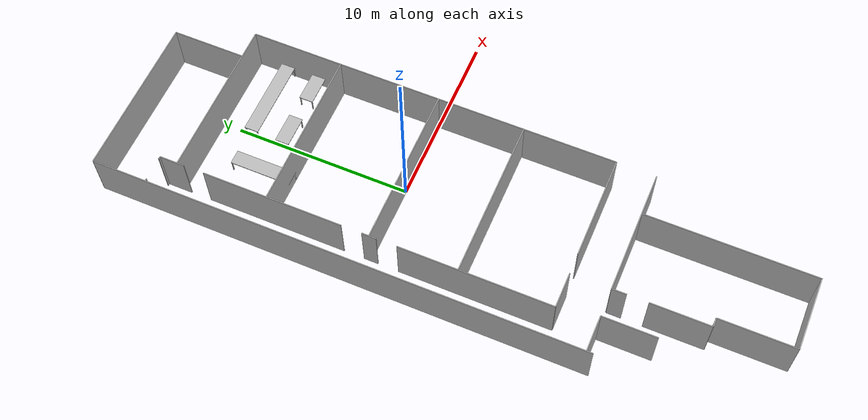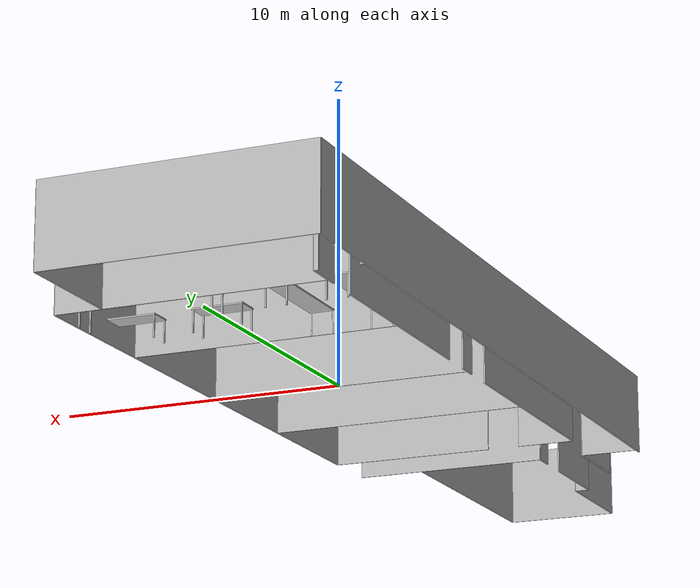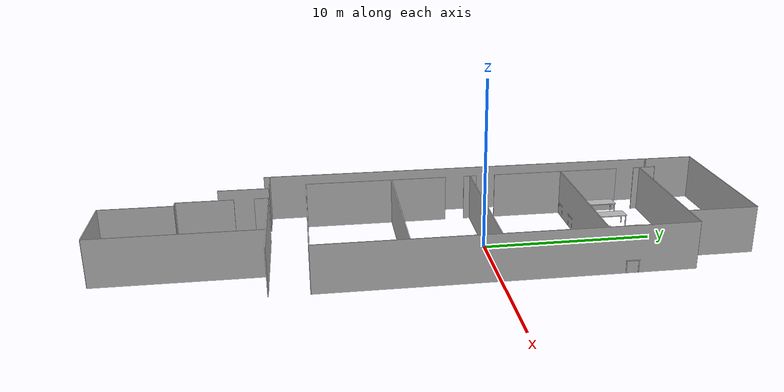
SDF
<?xml version="1.0" ?>
<sdf version="1.7">
  <model name="car_layout">
    <static>true</static>

    <model name='wall_sx'>
      <static>1</static>
      <link name='link'>
        <pose>-1.6 15.1 1.4 0 -0 0</pose>
        <collision name='collision'>
          <geometry>
            <box>
              <size>9 0.05 2.8</size>
            </box>
          </geometry>
        </collision>
        <visual name='visual'>
          <geometry>
            <box>
              <size>9 0.05 2.8</size>
            </box>
          </geometry>
        </visual>
      </link>
    </model>

    <model name='wall_dx'>
      <static>1</static>
      <link name='link'>
        <pose>0.05 -21.75 1.4 0 -0 0</pose>
        <collision name='collision'>
          <geometry>
            <box>
              <size>4.1 0.05 2.8</size>
            </box>
          </geometry>
        </collision>
        <visual name='visual'>
          <geometry>
            <box>
              <size>4.1 0.05 2.8</size>
            </box>
          </geometry>
        </visual>
      </link>
    </model>

    <model name='wall_dx_2'>
      <static>1</static>
      <link name='link'>
        <pose>-2.25 -17.55 1.4 0 -0 0</pose>
        <collision name='collision'>
          <geometry>
            <box>
              <size>0.5 0.05 2.8</size>
            </box>
          </geometry>
        </collision>
        <visual name='visual'>
          <geometry>
            <box>
              <size>0.5 0.05 2.8</size>
            </box>
          </geometry>
        </visual>
      </link>
    </model>

    <model name='wall_sopra'>
      <static>1</static>
      <link name='link'>
        <pose>4.5 0.45 1.4 0 -0 1.57</pose>
        <collision name='collision'>
          <geometry>
            <box>
              <size>21.1 0.05 2.8</size>
            </box>
          </geometry>
        </collision>
        <visual name='visual'>
          <geometry>
            <box>
              <size>21.1 0.05 2.8</size>
            </box>
          </geometry>
        </visual>
      </link>
    </model>

    <model name='wall_sopra_1'>
      <static>1</static>
      <link name='link'>
        <pose>2.9 13.05 1.4 0 -0 1.57</pose>
        <collision name='collision'>
          <geometry>
            <box>
              <size>4.1 0.05 2.8</size>
            </box>
          </geometry>
        </collision>
        <visual name='visual'>
          <geometry>
            <box>
              <size>4.1 0.05 2.8</size>
            </box>
          </geometry>
        </visual>
      </link>
    </model>

    <model name='wall_sopra_2'>
      <static>1</static>
      <link name='link'>
        <pose>-4.1 -13.8 1.4 0 -0 1.57</pose>
        <collision name='collision'>
          <geometry>
            <box>
              <size>3 0.05 2.8</size>
            </box>
          </geometry>
        </collision>
        <visual name='visual'>
          <geometry>
            <box>
              <size>3 0.05 2.8</size>
            </box>
          </geometry>
        </visual>
      </link>
    </model>

    <model name='wall_sopra_3'>
      <static>1</static>
      <link name='link'>
        <pose>2.1 -17.025 1.4 0 -0 1.57</pose>
        <collision name='collision'>
          <geometry>
            <box>
              <size>9.45 0.05 2.8</size>
            </box>
          </geometry>
        </collision>
        <visual name='visual'>
          <geometry>
            <box>
              <size>9.45 0.05 2.8</size>
            </box>
          </geometry>
        </visual>
      </link>
    </model>

    <model name='corridor'>
      <static>1</static>
      <link name='link'>
        <pose>-6.1 1.225 1.4 0 -0 1.57</pose>
        <collision name='collision'>
          <geometry>
            <box>
              <size>27.75 0.05 2.8</size>
            </box>
          </geometry>
        </collision>
        <visual name='visual'>
          <geometry>
            <box>
              <size>27.75 0.05 2.8</size>
            </box>
          </geometry>
        </visual>
      </link>
    </model>

    <model name='corridor_vertical'>
      <static>1</static>
      <link name='link'>
        <pose>-5.1 -12.3 1.4 0 -0 0</pose>
        <collision name='collision'>
          <geometry>
            <box>
              <size>2 0.05 2.8</size>
            </box>
          </geometry>
        </collision>
        <visual name='visual'>
          <geometry>
            <box>
              <size>2 0.05 2.8</size>
            </box>
          </geometry>
        </visual>
      </link>
    </model>

    <model name='i'>
      <static>1</static>
      <link name='link'>
        <pose>0 11 1.4 0 -0 0</pose>
        <collision name='collision'>
          <geometry>
            <box>
              <size>9 0.05 2.8</size>
            </box>
          </geometry>
        </collision>
        <visual name='visual'>
          <geometry>
            <box>
              <size>9 0.05 2.8</size>
            </box>
          </geometry>
        </visual>
      </link>
    </model>

    <model name='i_2'>
      <static>1</static>
      <link name='link'>
        <pose>-4.575 12 1.4 0 -0 0</pose>
        <collision name='collision'>
          <geometry>
            <box>
              <size>0.15 0.05 2.8</size>
            </box>
          </geometry>
        </collision>
        <visual name='visual'>
          <geometry>
            <box>
              <size>0.15 0.05 2.8</size>
            </box>
          </geometry>
        </visual>
      </link>
    </model>

    <model name='i_3'>
      <static>1</static>
      <link name='link'>
        <pose>-6.025 12 1.4 0 -0 0</pose>
        <collision name='collision'>
          <geometry>
            <box>
              <size>0.15 0.05 2.8</size>
            </box>
          </geometry>
        </collision>
        <visual name='visual'>
          <geometry>
            <box>
              <size>0.15 0.05 2.8</size>
            </box>
          </geometry>
        </visual>
      </link>
    </model>

    <model name='h'>
      <static>1</static>
      <link name='link'>
        <pose>0 5.8 1.4 0 -0 0</pose>
        <collision name='collision'>
          <geometry>
            <box>
              <size>9 0.05 2.8</size>
            </box>
          </geometry>
        </collision>
        <visual name='visual'>
          <geometry>
            <box>
              <size>9 0.05 2.8</size>
            </box>
          </geometry>
        </visual>
      </link>
    </model>

    <model name='h_oriz'>
      <static>1</static>
      <link name='link'>
        <pose>-4.5 11.3 1.4 0 -0 1.57</pose>
        <collision name='collision'>
          <geometry>
            <box>
              <size>1.4 0.05 2.8</size>
            </box>
          </geometry>
        </collision>
        <visual name='visual'>
          <geometry>
            <box>
              <size>1.4 0.05 2.8</size>
            </box>
          </geometry>
        </visual>
      </link>
    </model>

    <model name='j'>
      <static>1</static>
      <link name='link'>
        <pose>0 0 1.4 0 -0 0</pose>
        <collision name='collision'>
          <geometry>
            <box>
              <size>9 0.05 2.8</size>
            </box>
          </geometry>
        </collision>
        <visual name='visual'>
          <geometry>
            <box>
              <size>9 0.05 2.8</size>
            </box>
          </geometry>
        </visual>
      </link>
    </model>

    <model name='j_h_oriz'>
      <static>1</static>
      <link name='link'>
        <pose>-4.5 5.5 1.4 0 -0 1.57</pose>
        <collision name='collision'>
          <geometry>
            <box>
              <size>7.9 0.05 2.8</size>
            </box>
          </geometry>
        </collision>
        <visual name='visual'>
          <geometry>
            <box>
              <size>7.9 0.05 2.8</size>
            </box>
          </geometry>
        </visual>
      </link>
    </model>

    <model name='j_oriz'>
      <static>1</static>
      <link name='link'>
        <pose>-4.5 0 1.4 0 -0 1.57</pose>
        <collision name='collision'>
          <geometry>
            <box>
              <size>0.8 0.05 2.8</size>
            </box>
          </geometry>
        </collision>
        <visual name='visual'>
          <geometry>
            <box>
              <size>0.8 0.05 2.8</size>
            </box>
          </geometry>
        </visual>
      </link>
    </model>

    <model name='k'>
      <static>1</static>
      <link name='link'>
        <pose>0 -4.9 1.4 0 -0 0</pose>
        <collision name='collision'>
          <geometry>
            <box>
              <size>9 0.05 2.8</size>
            </box>
          </geometry>
        </collision>
        <visual name='visual'>
          <geometry>
            <box>
              <size>9 0.05 2.8</size>
            </box>
          </geometry>
        </visual>
      </link>
    </model>

    <model name='pratica'>
      <static>1</static>
      <link name='link'>
        <pose>1.575 -10.1 1.4 0 -0 0</pose>
        <collision name='collision'>
          <geometry>
            <box>
              <size>5.85 0.05 2.8</size>
            </box>
          </geometry>
        </collision>
        <visual name='visual'>
          <geometry>
            <box>
              <size>5.85 0.05 2.8</size>
            </box>
          </geometry>
        </visual>
      </link>
    </model>

    <model name='pratica2'>
      <static>1</static>
      <link name='link'>
        <pose>-3.5 -10.1 1.4 0 -0 0</pose>
        <collision name='collision'>
          <geometry>
            <box>
              <size>2 0.05 2.8</size>
            </box>
          </geometry>
        </collision>
        <visual name='visual'>
          <geometry>
            <box>
              <size>2 0.05 2.8</size>
            </box>
          </geometry>
        </visual>
      </link>
    </model>

    <model name='k_pratica_oriz'>
      <static>1</static>
      <link name='link'>
        <pose>-4.5 -5.825 1.4 0 -0 1.57</pose>
        <collision name='collision'>
          <geometry>
            <box>
              <size>8.55 0.05 2.8</size>
            </box>
          </geometry>
        </collision>
        <visual name='visual'>
          <geometry>
            <box>
              <size>8.55 0.05 2.8</size>
            </box>
          </geometry>
        </visual>
      </link>
    </model>

    <model name='quadrupedi'>
      <static>1</static>
      <link name='link'>
        <pose>1 -12.3 1.4 0 -0 0</pose>
        <collision name='collision'>
          <geometry>
            <box>
              <size>7 0.05 2.8</size>
            </box>
          </geometry>
        </collision>
        <visual name='visual'>
          <geometry>
            <box>
              <size>7 0.05 2.8</size>
            </box>
          </geometry>
        </visual>
      </link>
    </model>

    <model name='quadrupedi_oriz1'>
      <static>1</static>
      <link name='link'>
        <pose>-2.5 -12.7 1.4 0 -0 1.57</pose>
        <collision name='collision'>
          <geometry>
            <box>
              <size>0.8 0.05 2.8</size>
            </box>
          </geometry>
        </collision>
        <visual name='visual'>
          <geometry>
            <box>
              <size>0.8 0.05 2.8</size>
            </box>
          </geometry>
        </visual>
      </link>
    </model>

    <model name='quadrupedi_oriz2'>
      <static>1</static>
      <link name='link'>
        <pose>-2.5 -15.9 1.4 0 -0 1.57</pose>
        <collision name='collision'>
          <geometry>
            <box>
              <size>3.3 0.05 2.8</size>
            </box>
          </geometry>
        </collision>
        <visual name='visual'>
          <geometry>
            <box>
              <size>3.3 0.05 2.8</size>
            </box>
          </geometry>
        </visual>
      </link>
    </model>

    <model name='quadrupedi_oriz3'>
      <static>1</static>
      <link name='link'>
        <pose>-2 -19.65 1.4 0 -0 1.57</pose>
        <collision name='collision'>
          <geometry>
            <box>
              <size>4.2 0.05 2.8</size>
            </box>
          </geometry>
        </collision>
        <visual name='visual'>
          <geometry>
            <box>
              <size>4.2 0.05 2.8</size>
            </box>
          </geometry>
        </visual>
      </link>
    </model>

    <model name="table1">
      <static>1</static>
      <link name="link">
        <pose>-4 7.5 0.75 0 0 0</pose>
        <collision name="collision">
          <geometry>
            <box>
              <size>0.8 3.5 0.05</size>
            </box>
          </geometry>
        </collision>
        <visual name="visual">
          <geometry>
            <box>
              <size>0.8 3.5 0.05</size>
            </box>
          </geometry>
        </visual>
      </link>

      <!-- legs -->
      <link name="leg1">
        <pose>-3.65 9.2 0.375 0 0 0</pose>
        <collision name="collision">
          <geometry>
            <box>
              <size>0.05 0.05 0.75</size>
            </box>
          </geometry>
        </collision>
        <visual name="visual">
          <geometry>
            <box>
              <size>0.05 0.05 0.75</size>
            </box>
          </geometry>
        </visual>
      </link>

      <link name="leg2">
        <pose>-3.65 5.8 0.375 0 0 0</pose>
        <collision name="collision">
          <geometry>
            <box>
              <size>0.05 0.05 0.75</size>
            </box>
          </geometry>
        </collision>
        <visual name="visual">
          <geometry>
            <box>
              <size>0.05 0.05 0.75</size>
            </box>
          </geometry>
        </visual>
      </link>

      <link name="leg3">
        <pose>-4.35 9.2 0.375 0 0 0</pose>
        <collision name="collision">
          <geometry>
            <box>
              <size>0.05 0.05 0.75</size>
            </box>
          </geometry>
        </collision>
        <visual name="visual">
          <geometry>
            <box>
              <size>0.05 0.05 0.75</size>
            </box>
          </geometry>
        </visual>
      </link>

      <link name="leg4">
        <pose>-4.35 5.8 0.375 0 0 0</pose>
        <collision name="collision">
          <geometry>
            <box>
              <size>0.05 0.05 0.75</size>
            </box>
          </geometry>
        </collision>
        <visual name="visual">
          <geometry>
            <box>
              <size>0.05 0.05 0.75</size>
            </box>
          </geometry>
        </visual>
      </link>
    </model>

    <model name="work_table_2">
        <static>1</static>

        <!-- table top -->
        <link name="table_top">
            <pose>-2 7.5 0.75 0 0 0</pose>
            <collision name="collision">
            <geometry>
                <box>
                <size>0.8 3.5 0.05</size>
                </box>
            </geometry>
            </collision>
            <visual name="visual">
            <geometry>
                <box>
                <size>0.8 3.5 0.05</size>
                </box>
            </geometry>
            </visual>
        </link>

        <link name="leg1">
            <pose>-1.65 9.2 0.375 0 0 0</pose>
            <collision name="collision">
            <geometry>
                <box>
                <size>0.05 0.05 0.75</size>
                </box>
            </geometry>
            </collision>
            <visual name="visual">
            <geometry>
                <box>
                <size>0.05 0.05 0.75</size>
                </box>
            </geometry>
            </visual>
        </link>

        <link name="leg2">
            <pose>-1.65 5.8 0.375 0 0 0</pose>
            <collision name="collision">
            <geometry>
                <box>
                <size>0.05 0.05 0.75</size>
                </box>
            </geometry>
            </collision>
            <visual name="visual">
            <geometry>
                <box>
                <size>0.05 0.05 0.75</size>
                </box>
            </geometry>
            </visual>
        </link>

        <link name="leg3">
            <pose>-2.35 9.2 0.375 0 0 0</pose>
            <collision name="collision">
            <geometry>
                <box>
                <size>0.05 0.05 0.75</size>
                </box>
            </geometry>
            </collision>
            <visual name="visual">
            <geometry>
                <box>
                <size>0.05 0.05 0.75</size>
                </box>
            </geometry>
            </visual>
        </link>

        <link name="leg4">
            <pose>-2.35 5.8 0.375 0 0 0</pose>
            <collision name="collision">
            <geometry>
                <box>
                <size>0.05 0.05 0.75</size>
                </box>
            </geometry>
            </collision>
            <visual name="visual">
            <geometry>
                <box>
                <size>0.05 0.05 0.75</size>
                </box>
            </geometry>
            </visual>
        </link>
    </model>

    <model name="work_table_3">
        <static>1</static>
        <link name="table_top">
            <pose>0.7 7.3 0.75 0 0 0</pose>
            <collision name="collision">
            <geometry>
                <box>
                <size>1.75 0.8 0.05</size>
                </box>
            </geometry>
            </collision>
            <visual name="visual">
            <geometry>
                <box>
                <size>1.75 0.8 0.05</size>
                </box>
            </geometry>
            </visual>
        </link>

        <!-- legs -->
        <link name="leg1">
            <pose>1.525 7.65 0.375 0 0 0</pose>
            <collision name="collision">
            <geometry>
                <box>
                <size>0.05 0.05 0.75</size>
                </box>
            </geometry>
            </collision>
            <visual name="visual">
            <geometry>
                <box>
                <size>0.05 0.05 0.75</size>
                </box>
            </geometry>
            </visual>
        </link>

        <link name="leg2">
            <pose>1.525 6.95 0.375 0 0 0</pose>
            <collision name="collision">
            <geometry>
                <box>
                <size>0.05 0.05 0.75</size>
                </box>
            </geometry>
            </collision>
            <visual name="visual">
            <geometry>
                <box>
                <size>0.05 0.05 0.75</size>
                </box>
            </geometry>
            </visual>
        </link>

        <link name="leg3">
            <pose>-0.125 7.65 0.375 0 0 0</pose>
            <collision name="collision">
            <geometry>
                <box>
                <size>0.05 0.05 0.75</size>
                </box>
            </geometry>
            </collision>
            <visual name="visual">
            <geometry>
                <box>
                <size>0.05 0.05 0.75</size>
                </box>
            </geometry>
            </visual>
        </link>

        <link name="leg4">
            <pose>-0.125 6.95 0.375 0 0 0</pose>
            <collision name="collision">
            <geometry>
                <box>
                <size>0.05 0.05 0.75</size>
                </box>
            </geometry>
            </collision>
            <visual name="visual">
            <geometry>
                <box>
                <size>0.05 0.05 0.75</size>
                </box>
            </geometry>
            </visual>
        </link>
    </model>

    <model name="work_table_4">
        <static>1</static>

        <link name="table_top">
            <pose>3.7 7.3 0.75 0 0 0</pose>
            <collision name="collision">
            <geometry>
                <box>
                <size>1.75 0.8 0.05</size>
                </box>
            </geometry>
            </collision>
            <visual name="visual">
            <geometry>
                <box>
                <size>1.75 0.8 0.05</size>
                </box>
            </geometry>
            </visual>
        </link>

        <!-- legs -->
        <link name="leg1">
            <pose>4.525 7.65 0.375 0 0 0</pose>
            <collision name="collision">
            <geometry>
                <box>
                <size>0.05 0.05 0.75</size>
                </box>
            </geometry>
            </collision>
            <visual name="visual">
            <geometry>
                <box>
                <size>0.05 0.05 0.75</size>
                </box>
            </geometry>
            </visual>
        </link>

        <link name="leg2">
            <pose>4.525 6.95 0.375 0 0 0</pose>
            <collision name="collision">
            <geometry>
                <box>
                <size>0.05 0.05 0.75</size>
                </box>
            </geometry>
            </collision>
            <visual name="visual">
            <geometry>
                <box>
                <size>0.05 0.05 0.75</size>
                </box>
            </geometry>
            </visual>
        </link>

        <link name="leg3">
            <pose>2.875 7.65 0.375 0 0 0</pose>
            <collision name="collision">
            <geometry>
                <box>
                <size>0.05 0.05 0.75</size>
                </box>
            </geometry>
            </collision>
            <visual name="visual">
            <geometry>
                <box>
                <size>0.05 0.05 0.75</size>
                </box>
            </geometry>
            </visual>
        </link>

        <link name="leg4">
            <pose>2.875 6.95 0.375 0 0 0</pose>
            <collision name="collision">
            <geometry>
                <box>
                <size>0.05 0.05 0.75</size>
                </box>
            </geometry>
            </collision>
            <visual name="visual">
            <geometry>
                <box>
                <size>0.05 0.05 0.75</size>
                </box>
            </geometry>
            </visual>
        </link>
    </model>

    <model name="work_table_5">
        <static>1</static>

        <link name="table_top">
            <pose>2.2 9.2 0.75 0 0 0</pose>
            <collision name="collision">
            <geometry>
                <box>
                <size>4.6 0.8 0.05</size>
                </box>
            </geometry>
            </collision>
            <visual name="visual">
            <geometry>
                <box>
                <size>4.6 0.8 0.05</size>
                </box>
            </geometry>
            </visual>
        </link>

        <!-- legs -->
        <link name="leg1">
            <pose>4.45 9.55 0.375 0 0 0</pose>
            <collision name="collision">
            <geometry>
                <box>
                <size>0.05 0.05 0.75</size>
                </box>
            </geometry>
            </collision>
            <visual name="visual">
            <geometry>
                <box>
                <size>0.05 0.05 0.75</size>
                </box>
            </geometry>
            </visual>
        </link>

        <link name="leg2">
            <pose>4.45 8.85 0.375 0 0 0</pose>
            <collision name="collision">
            <geometry>
                <box>
                <size>0.05 0.05 0.75</size>
                </box>
            </geometry>
            </collision>
            <visual name="visual">
            <geometry>
                <box>
                <size>0.05 0.05 0.75</size>
                </box>
            </geometry>
            </visual>
        </link>

        <link name="leg3">
            <pose>-0.05 9.55 0.375 0 0 0</pose>
            <collision name="collision">
            <geometry>
                <box>
                <size>0.05 0.05 0.75</size>
                </box>
            </geometry>
            </collision>
            <visual name="visual">
            <geometry>
                <box>
                <size>0.05 0.05 0.75</size>
                </box>
            </geometry>
            </visual>
        </link>

        <link name="leg4">
            <pose>-0.05 8.85 0.375 0 0 0</pose>
            <collision name="collision">
            <geometry>
                <box>
                <size>0.05 0.05 0.75</size>
                </box>
            </geometry>
            </collision>
            <visual name="visual">
            <geometry>
                <box>
                <size>0.05 0.05 0.75</size>
                </box>
            </geometry>
            </visual>
        </link>
    </model>

  </model>
</sdf>
